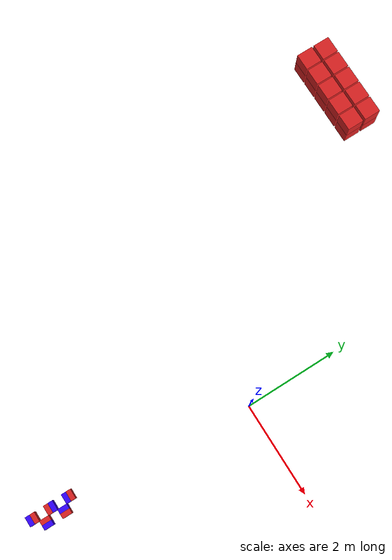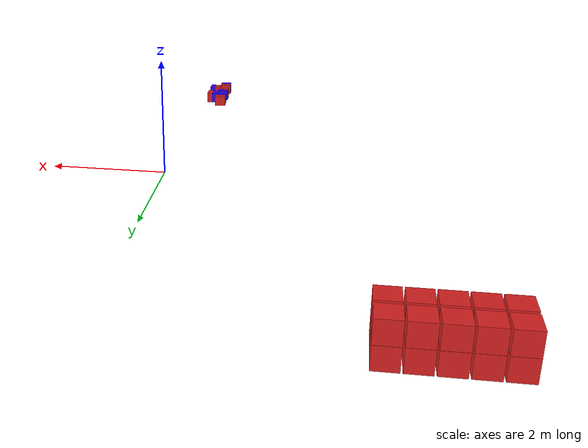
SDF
<sdf version="1.9">
 <world name="robocon2027">
  <model name="earth_red_01">
   <pose>-5.2250 4.8000 0.1770 0 0 0</pose>
   <link name="link">
    <inertial>
     <mass>0.6</mass>
     <inertia><ixx>0.012250</ixx><iyy>0.012250</iyy><izz>0.012250</izz></inertia>
    </inertial>
    <collision name="c">
     <geometry><box><size>0.35 0.35 0.35</size></box></geometry>
     <surface><friction><ode><mu>0.7</mu><mu2>0.7</mu2></ode></friction></surface>
    </collision>
    <visual name="v">
     <geometry><box><size>0.35 0.35 0.35</size></box></geometry>
     <material><ambient>0.875 0.133 0.133 1</ambient><diffuse>0.875 0.133 0.133 1</diffuse></material>
    </visual>
   </link>
  </model>
  <model name="earth_red_02">
   <pose>-5.2250 4.8000 0.5290 0 0 0</pose>
   <link name="link">
    <inertial>
     <mass>0.6</mass>
     <inertia><ixx>0.012250</ixx><iyy>0.012250</iyy><izz>0.012250</izz></inertia>
    </inertial>
    <collision name="c">
     <geometry><box><size>0.35 0.35 0.35</size></box></geometry>
     <surface><friction><ode><mu>0.7</mu><mu2>0.7</mu2></ode></friction></surface>
    </collision>
    <visual name="v">
     <geometry><box><size>0.35 0.35 0.35</size></box></geometry>
     <material><ambient>0.875 0.133 0.133 1</ambient><diffuse>0.875 0.133 0.133 1</diffuse></material>
    </visual>
   </link>
  </model>
  <model name="earth_red_03">
   <pose>-5.2250 5.2000 0.1770 0 0 0</pose>
   <link name="link">
    <inertial>
     <mass>0.6</mass>
     <inertia><ixx>0.012250</ixx><iyy>0.012250</iyy><izz>0.012250</izz></inertia>
    </inertial>
    <collision name="c">
     <geometry><box><size>0.35 0.35 0.35</size></box></geometry>
     <surface><friction><ode><mu>0.7</mu><mu2>0.7</mu2></ode></friction></surface>
    </collision>
    <visual name="v">
     <geometry><box><size>0.35 0.35 0.35</size></box></geometry>
     <material><ambient>0.875 0.133 0.133 1</ambient><diffuse>0.875 0.133 0.133 1</diffuse></material>
    </visual>
   </link>
  </model>
  <model name="earth_red_04">
   <pose>-5.2250 5.2000 0.5290 0 0 0</pose>
   <link name="link">
    <inertial>
     <mass>0.6</mass>
     <inertia><ixx>0.012250</ixx><iyy>0.012250</iyy><izz>0.012250</izz></inertia>
    </inertial>
    <collision name="c">
     <geometry><box><size>0.35 0.35 0.35</size></box></geometry>
     <surface><friction><ode><mu>0.7</mu><mu2>0.7</mu2></ode></friction></surface>
    </collision>
    <visual name="v">
     <geometry><box><size>0.35 0.35 0.35</size></box></geometry>
     <material><ambient>0.875 0.133 0.133 1</ambient><diffuse>0.875 0.133 0.133 1</diffuse></material>
    </visual>
   </link>
  </model>
  <model name="earth_red_05">
   <pose>-4.8450 4.8000 0.1770 0 0 0</pose>
   <link name="link">
    <inertial>
     <mass>0.6</mass>
     <inertia><ixx>0.012250</ixx><iyy>0.012250</iyy><izz>0.012250</izz></inertia>
    </inertial>
    <collision name="c">
     <geometry><box><size>0.35 0.35 0.35</size></box></geometry>
     <surface><friction><ode><mu>0.7</mu><mu2>0.7</mu2></ode></friction></surface>
    </collision>
    <visual name="v">
     <geometry><box><size>0.35 0.35 0.35</size></box></geometry>
     <material><ambient>0.875 0.133 0.133 1</ambient><diffuse>0.875 0.133 0.133 1</diffuse></material>
    </visual>
   </link>
  </model>
  <model name="earth_red_06">
   <pose>-4.8450 4.8000 0.5290 0 0 0</pose>
   <link name="link">
    <inertial>
     <mass>0.6</mass>
     <inertia><ixx>0.012250</ixx><iyy>0.012250</iyy><izz>0.012250</izz></inertia>
    </inertial>
    <collision name="c">
     <geometry><box><size>0.35 0.35 0.35</size></box></geometry>
     <surface><friction><ode><mu>0.7</mu><mu2>0.7</mu2></ode></friction></surface>
    </collision>
    <visual name="v">
     <geometry><box><size>0.35 0.35 0.35</size></box></geometry>
     <material><ambient>0.875 0.133 0.133 1</ambient><diffuse>0.875 0.133 0.133 1</diffuse></material>
    </visual>
   </link>
  </model>
  <model name="earth_red_07">
   <pose>-4.8450 5.2000 0.1770 0 0 0</pose>
   <link name="link">
    <inertial>
     <mass>0.6</mass>
     <inertia><ixx>0.012250</ixx><iyy>0.012250</iyy><izz>0.012250</izz></inertia>
    </inertial>
    <collision name="c">
     <geometry><box><size>0.35 0.35 0.35</size></box></geometry>
     <surface><friction><ode><mu>0.7</mu><mu2>0.7</mu2></ode></friction></surface>
    </collision>
    <visual name="v">
     <geometry><box><size>0.35 0.35 0.35</size></box></geometry>
     <material><ambient>0.875 0.133 0.133 1</ambient><diffuse>0.875 0.133 0.133 1</diffuse></material>
    </visual>
   </link>
  </model>
  <model name="earth_red_08">
   <pose>-4.8450 5.2000 0.5290 0 0 0</pose>
   <link name="link">
    <inertial>
     <mass>0.6</mass>
     <inertia><ixx>0.012250</ixx><iyy>0.012250</iyy><izz>0.012250</izz></inertia>
    </inertial>
    <collision name="c">
     <geometry><box><size>0.35 0.35 0.35</size></box></geometry>
     <surface><friction><ode><mu>0.7</mu><mu2>0.7</mu2></ode></friction></surface>
    </collision>
    <visual name="v">
     <geometry><box><size>0.35 0.35 0.35</size></box></geometry>
     <material><ambient>0.875 0.133 0.133 1</ambient><diffuse>0.875 0.133 0.133 1</diffuse></material>
    </visual>
   </link>
  </model>
  <model name="earth_red_09">
   <pose>-4.4650 4.8000 0.1770 0 0 0</pose>
   <link name="link">
    <inertial>
     <mass>0.6</mass>
     <inertia><ixx>0.012250</ixx><iyy>0.012250</iyy><izz>0.012250</izz></inertia>
    </inertial>
    <collision name="c">
     <geometry><box><size>0.35 0.35 0.35</size></box></geometry>
     <surface><friction><ode><mu>0.7</mu><mu2>0.7</mu2></ode></friction></surface>
    </collision>
    <visual name="v">
     <geometry><box><size>0.35 0.35 0.35</size></box></geometry>
     <material><ambient>0.875 0.133 0.133 1</ambient><diffuse>0.875 0.133 0.133 1</diffuse></material>
    </visual>
   </link>
  </model>
  <model name="earth_red_10">
   <pose>-4.4650 4.8000 0.5290 0 0 0</pose>
   <link name="link">
    <inertial>
     <mass>0.6</mass>
     <inertia><ixx>0.012250</ixx><iyy>0.012250</iyy><izz>0.012250</izz></inertia>
    </inertial>
    <collision name="c">
     <geometry><box><size>0.35 0.35 0.35</size></box></geometry>
     <surface><friction><ode><mu>0.7</mu><mu2>0.7</mu2></ode></friction></surface>
    </collision>
    <visual name="v">
     <geometry><box><size>0.35 0.35 0.35</size></box></geometry>
     <material><ambient>0.875 0.133 0.133 1</ambient><diffuse>0.875 0.133 0.133 1</diffuse></material>
    </visual>
   </link>
  </model>
  <model name="earth_red_11">
   <pose>-4.4650 5.2000 0.1770 0 0 0</pose>
   <link name="link">
    <inertial>
     <mass>0.6</mass>
     <inertia><ixx>0.012250</ixx><iyy>0.012250</iyy><izz>0.012250</izz></inertia>
    </inertial>
    <collision name="c">
     <geometry><box><size>0.35 0.35 0.35</size></box></geometry>
     <surface><friction><ode><mu>0.7</mu><mu2>0.7</mu2></ode></friction></surface>
    </collision>
    <visual name="v">
     <geometry><box><size>0.35 0.35 0.35</size></box></geometry>
     <material><ambient>0.875 0.133 0.133 1</ambient><diffuse>0.875 0.133 0.133 1</diffuse></material>
    </visual>
   </link>
  </model>
  <model name="earth_red_12">
   <pose>-4.4650 5.2000 0.5290 0 0 0</pose>
   <link name="link">
    <inertial>
     <mass>0.6</mass>
     <inertia><ixx>0.012250</ixx><iyy>0.012250</iyy><izz>0.012250</izz></inertia>
    </inertial>
    <collision name="c">
     <geometry><box><size>0.35 0.35 0.35</size></box></geometry>
     <surface><friction><ode><mu>0.7</mu><mu2>0.7</mu2></ode></friction></surface>
    </collision>
    <visual name="v">
     <geometry><box><size>0.35 0.35 0.35</size></box></geometry>
     <material><ambient>0.875 0.133 0.133 1</ambient><diffuse>0.875 0.133 0.133 1</diffuse></material>
    </visual>
   </link>
  </model>
  <model name="earth_red_13">
   <pose>-4.0850 4.8000 0.1770 0 0 0</pose>
   <link name="link">
    <inertial>
     <mass>0.6</mass>
     <inertia><ixx>0.012250</ixx><iyy>0.012250</iyy><izz>0.012250</izz></inertia>
    </inertial>
    <collision name="c">
     <geometry><box><size>0.35 0.35 0.35</size></box></geometry>
     <surface><friction><ode><mu>0.7</mu><mu2>0.7</mu2></ode></friction></surface>
    </collision>
    <visual name="v">
     <geometry><box><size>0.35 0.35 0.35</size></box></geometry>
     <material><ambient>0.875 0.133 0.133 1</ambient><diffuse>0.875 0.133 0.133 1</diffuse></material>
    </visual>
   </link>
  </model>
  <model name="earth_red_14">
   <pose>-4.0850 4.8000 0.5290 0 0 0</pose>
   <link name="link">
    <inertial>
     <mass>0.6</mass>
     <inertia><ixx>0.012250</ixx><iyy>0.012250</iyy><izz>0.012250</izz></inertia>
    </inertial>
    <collision name="c">
     <geometry><box><size>0.35 0.35 0.35</size></box></geometry>
     <surface><friction><ode><mu>0.7</mu><mu2>0.7</mu2></ode></friction></surface>
    </collision>
    <visual name="v">
     <geometry><box><size>0.35 0.35 0.35</size></box></geometry>
     <material><ambient>0.875 0.133 0.133 1</ambient><diffuse>0.875 0.133 0.133 1</diffuse></material>
    </visual>
   </link>
  </model>
  <model name="earth_red_15">
   <pose>-4.0850 5.2000 0.1770 0 0 0</pose>
   <link name="link">
    <inertial>
     <mass>0.6</mass>
     <inertia><ixx>0.012250</ixx><iyy>0.012250</iyy><izz>0.012250</izz></inertia>
    </inertial>
    <collision name="c">
     <geometry><box><size>0.35 0.35 0.35</size></box></geometry>
     <surface><friction><ode><mu>0.7</mu><mu2>0.7</mu2></ode></friction></surface>
    </collision>
    <visual name="v">
     <geometry><box><size>0.35 0.35 0.35</size></box></geometry>
     <material><ambient>0.875 0.133 0.133 1</ambient><diffuse>0.875 0.133 0.133 1</diffuse></material>
    </visual>
   </link>
  </model>
  <model name="earth_red_16">
   <pose>-4.0850 5.2000 0.5290 0 0 0</pose>
   <link name="link">
    <inertial>
     <mass>0.6</mass>
     <inertia><ixx>0.012250</ixx><iyy>0.012250</iyy><izz>0.012250</izz></inertia>
    </inertial>
    <collision name="c">
     <geometry><box><size>0.35 0.35 0.35</size></box></geometry>
     <surface><friction><ode><mu>0.7</mu><mu2>0.7</mu2></ode></friction></surface>
    </collision>
    <visual name="v">
     <geometry><box><size>0.35 0.35 0.35</size></box></geometry>
     <material><ambient>0.875 0.133 0.133 1</ambient><diffuse>0.875 0.133 0.133 1</diffuse></material>
    </visual>
   </link>
  </model>
  <model name="earth_red_17">
   <pose>-3.7050 4.8000 0.1770 0 0 0</pose>
   <link name="link">
    <inertial>
     <mass>0.6</mass>
     <inertia><ixx>0.012250</ixx><iyy>0.012250</iyy><izz>0.012250</izz></inertia>
    </inertial>
    <collision name="c">
     <geometry><box><size>0.35 0.35 0.35</size></box></geometry>
     <surface><friction><ode><mu>0.7</mu><mu2>0.7</mu2></ode></friction></surface>
    </collision>
    <visual name="v">
     <geometry><box><size>0.35 0.35 0.35</size></box></geometry>
     <material><ambient>0.875 0.133 0.133 1</ambient><diffuse>0.875 0.133 0.133 1</diffuse></material>
    </visual>
   </link>
  </model>
  <model name="earth_red_18">
   <pose>-3.7050 4.8000 0.5290 0 0 0</pose>
   <link name="link">
    <inertial>
     <mass>0.6</mass>
     <inertia><ixx>0.012250</ixx><iyy>0.012250</iyy><izz>0.012250</izz></inertia>
    </inertial>
    <collision name="c">
     <geometry><box><size>0.35 0.35 0.35</size></box></geometry>
     <surface><friction><ode><mu>0.7</mu><mu2>0.7</mu2></ode></friction></surface>
    </collision>
    <visual name="v">
     <geometry><box><size>0.35 0.35 0.35</size></box></geometry>
     <material><ambient>0.875 0.133 0.133 1</ambient><diffuse>0.875 0.133 0.133 1</diffuse></material>
    </visual>
   </link>
  </model>
  <model name="earth_red_19">
   <pose>-3.7050 5.2000 0.1770 0 0 0</pose>
   <link name="link">
    <inertial>
     <mass>0.6</mass>
     <inertia><ixx>0.012250</ixx><iyy>0.012250</iyy><izz>0.012250</izz></inertia>
    </inertial>
    <collision name="c">
     <geometry><box><size>0.35 0.35 0.35</size></box></geometry>
     <surface><friction><ode><mu>0.7</mu><mu2>0.7</mu2></ode></friction></surface>
    </collision>
    <visual name="v">
     <geometry><box><size>0.35 0.35 0.35</size></box></geometry>
     <material><ambient>0.875 0.133 0.133 1</ambient><diffuse>0.875 0.133 0.133 1</diffuse></material>
    </visual>
   </link>
  </model>
  <model name="earth_red_20">
   <pose>-3.7050 5.2000 0.5290 0 0 0</pose>
   <link name="link">
    <inertial>
     <mass>0.6</mass>
     <inertia><ixx>0.012250</ixx><iyy>0.012250</iyy><izz>0.012250</izz></inertia>
    </inertial>
    <collision name="c">
     <geometry><box><size>0.35 0.35 0.35</size></box></geometry>
     <surface><friction><ode><mu>0.7</mu><mu2>0.7</mu2></ode></friction></surface>
    </collision>
    <visual name="v">
     <geometry><box><size>0.35 0.35 0.35</size></box></geometry>
     <material><ambient>0.875 0.133 0.133 1</ambient><diffuse>0.875 0.133 0.133 1</diffuse></material>
    </visual>
   </link>
  </model>
  <model name="sky_11">
   <pose>-0.4000 -3.8500 0.1020 0 0 0</pose>
   <link name="link">
    <inertial>
     <mass>0.22</mass>
     <inertia><ixx>0.001467</ixx><iyy>0.001467</iyy><izz>0.001467</izz></inertia>
    </inertial>
    <collision name="c">
     <geometry><box><size>0.2 0.2 0.2</size></box></geometry>
     <surface><friction><ode><mu>0.7</mu><mu2>0.7</mu2></ode></friction></surface>
    </collision>
    <visual name="v">
     <geometry><box><size>0.2 0.2 0.2</size></box></geometry>
     <material><ambient>0.902 0.871 0.745 1</ambient><diffuse>0.902 0.871 0.745 1</diffuse></material>
    </visual>
    <visual name="red_half">
     <pose>0 0.051000000000000004 0 0 0 0</pose>
     <geometry><box><size>0.20400000000000001 0.10200000000000001 0.20400000000000001</size></box></geometry>
     <material><ambient>0.875 0.133 0.133 1</ambient><diffuse>0.875 0.133 0.133 1</diffuse></material>
    </visual>
    <visual name="blue_half">
     <pose>0 -0.051000000000000004 0 0 0 0</pose>
     <geometry><box><size>0.20400000000000001 0.10200000000000001 0.20400000000000001</size></box></geometry>
     <material><ambient>0.196 0.0 1.0 1</ambient><diffuse>0.196 0.0 1.0 1</diffuse></material>
    </visual>
   </link>
  </model>
  <model name="sky_22">
   <pose>-0.2000 -4.0500 0.1020 0 0 0</pose>
   <link name="link">
    <inertial>
     <mass>0.22</mass>
     <inertia><ixx>0.001467</ixx><iyy>0.001467</iyy><izz>0.001467</izz></inertia>
    </inertial>
    <collision name="c">
     <geometry><box><size>0.2 0.2 0.2</size></box></geometry>
     <surface><friction><ode><mu>0.7</mu><mu2>0.7</mu2></ode></friction></surface>
    </collision>
    <visual name="v">
     <geometry><box><size>0.2 0.2 0.2</size></box></geometry>
     <material><ambient>0.902 0.871 0.745 1</ambient><diffuse>0.902 0.871 0.745 1</diffuse></material>
    </visual>
    <visual name="red_half">
     <pose>0.051000000000000004 0 0 0 0 0</pose>
     <geometry><box><size>0.10200000000000001 0.20400000000000001 0.20400000000000001</size></box></geometry>
     <material><ambient>0.875 0.133 0.133 1</ambient><diffuse>0.875 0.133 0.133 1</diffuse></material>
    </visual>
    <visual name="blue_half">
     <pose>-0.051000000000000004 0 0 0 0 0</pose>
     <geometry><box><size>0.10200000000000001 0.20400000000000001 0.20400000000000001</size></box></geometry>
     <material><ambient>0.196 0.0 1.0 1</ambient><diffuse>0.196 0.0 1.0 1</diffuse></material>
    </visual>
   </link>
  </model>
  <model name="sky_31">
   <pose>-0.4000 -4.2500 0.1020 0 0 0</pose>
   <link name="link">
    <inertial>
     <mass>0.22</mass>
     <inertia><ixx>0.001467</ixx><iyy>0.001467</iyy><izz>0.001467</izz></inertia>
    </inertial>
    <collision name="c">
     <geometry><box><size>0.2 0.2 0.2</size></box></geometry>
     <surface><friction><ode><mu>0.7</mu><mu2>0.7</mu2></ode></friction></surface>
    </collision>
    <visual name="v">
     <geometry><box><size>0.2 0.2 0.2</size></box></geometry>
     <material><ambient>0.902 0.871 0.745 1</ambient><diffuse>0.902 0.871 0.745 1</diffuse></material>
    </visual>
    <visual name="red_half">
     <pose>0 -0.051000000000000004 0 0 0 0</pose>
     <geometry><box><size>0.20400000000000001 0.10200000000000001 0.20400000000000001</size></box></geometry>
     <material><ambient>0.875 0.133 0.133 1</ambient><diffuse>0.875 0.133 0.133 1</diffuse></material>
    </visual>
    <visual name="blue_half">
     <pose>0 0.051000000000000004 0 0 0 0</pose>
     <geometry><box><size>0.20400000000000001 0.10200000000000001 0.20400000000000001</size></box></geometry>
     <material><ambient>0.196 0.0 1.0 1</ambient><diffuse>0.196 0.0 1.0 1</diffuse></material>
    </visual>
   </link>
  </model>
  <model name="sky_42">
   <pose>-0.2000 -4.4500 0.1020 0 0 0</pose>
   <link name="link">
    <inertial>
     <mass>0.22</mass>
     <inertia><ixx>0.001467</ixx><iyy>0.001467</iyy><izz>0.001467</izz></inertia>
    </inertial>
    <collision name="c">
     <geometry><box><size>0.2 0.2 0.2</size></box></geometry>
     <surface><friction><ode><mu>0.7</mu><mu2>0.7</mu2></ode></friction></surface>
    </collision>
    <visual name="v">
     <geometry><box><size>0.2 0.2 0.2</size></box></geometry>
     <material><ambient>0.902 0.871 0.745 1</ambient><diffuse>0.902 0.871 0.745 1</diffuse></material>
    </visual>
    <visual name="red_half">
     <pose>-0.051000000000000004 0 0 0 0 0</pose>
     <geometry><box><size>0.10200000000000001 0.20400000000000001 0.20400000000000001</size></box></geometry>
     <material><ambient>0.875 0.133 0.133 1</ambient><diffuse>0.875 0.133 0.133 1</diffuse></material>
    </visual>
    <visual name="blue_half">
     <pose>0.051000000000000004 0 0 0 0 0</pose>
     <geometry><box><size>0.10200000000000001 0.20400000000000001 0.20400000000000001</size></box></geometry>
     <material><ambient>0.196 0.0 1.0 1</ambient><diffuse>0.196 0.0 1.0 1</diffuse></material>
    </visual>
   </link>
  </model>
  <model name="sky_51">
   <pose>-0.4000 -4.6500 0.1020 0 0 0</pose>
   <link name="link">
    <inertial>
     <mass>0.22</mass>
     <inertia><ixx>0.001467</ixx><iyy>0.001467</iyy><izz>0.001467</izz></inertia>
    </inertial>
    <collision name="c">
     <geometry><box><size>0.2 0.2 0.2</size></box></geometry>
     <surface><friction><ode><mu>0.7</mu><mu2>0.7</mu2></ode></friction></surface>
    </collision>
    <visual name="v">
     <geometry><box><size>0.2 0.2 0.2</size></box></geometry>
     <material><ambient>0.902 0.871 0.745 1</ambient><diffuse>0.902 0.871 0.745 1</diffuse></material>
    </visual>
    <visual name="red_half">
     <pose>0 0.051000000000000004 0 0 0 0</pose>
     <geometry><box><size>0.20400000000000001 0.10200000000000001 0.20400000000000001</size></box></geometry>
     <material><ambient>0.875 0.133 0.133 1</ambient><diffuse>0.875 0.133 0.133 1</diffuse></material>
    </visual>
    <visual name="blue_half">
     <pose>0 -0.051000000000000004 0 0 0 0</pose>
     <geometry><box><size>0.20400000000000001 0.10200000000000001 0.20400000000000001</size></box></geometry>
     <material><ambient>0.196 0.0 1.0 1</ambient><diffuse>0.196 0.0 1.0 1</diffuse></material>
    </visual>
   </link>
  </model>
 </world>
</sdf>
